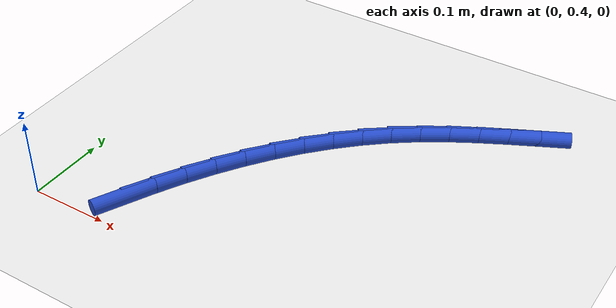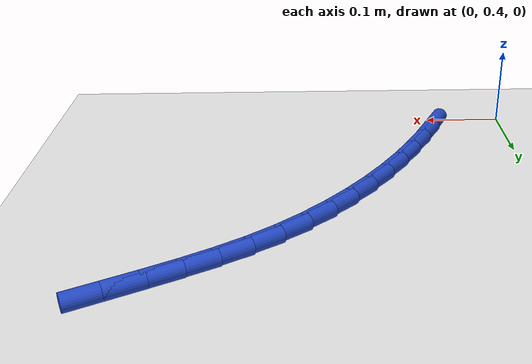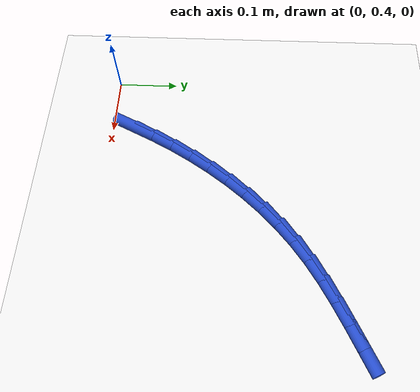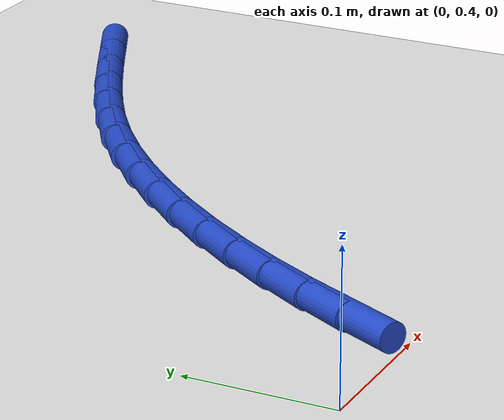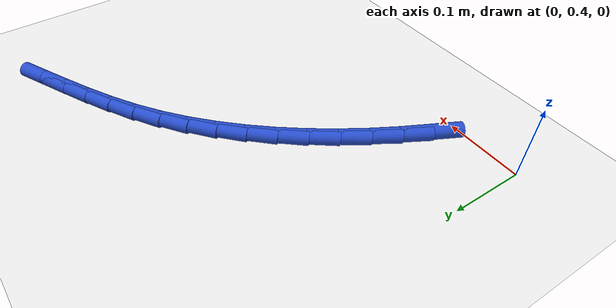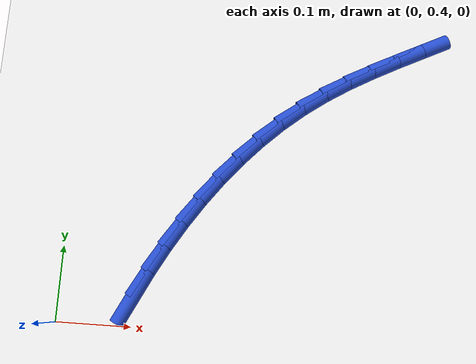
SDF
<sdf version="1.6">
 <world name="default">
  <model name="ground_plane">
   <static>1</static>
   <link name="link">
    <collision name="collision">
     <geometry><plane><normal>0 0 1</normal><size>100 100</size></plane></geometry>
     <surface><friction><ode><mu>100</mu><mu2>50</mu2></ode></friction></surface>
    </collision>
    <visual name="visual">
     <cast_shadows>0</cast_shadows>
     <geometry><plane><normal>0 0 1</normal><size>100 100</size></plane></geometry>
     <material>
      <script><uri>file://media/materials/scripts/gazebo.material</uri><name>Gazebo/WhiteGlow</name></script>
     </material>
    </visual>
   </link>
  </model>
  <model name="line">
   <link name="link_12">
    <pose>0.10034751541647847 0.4397093525467908 0.01 0 1.57 1.1107800819667435</pose>
    <collision name="collision">
     <geometry><cylinder><radius>0.01</radius><length>0.08</length></cylinder></geometry>
    </collision>
    <visual name="visual">
     <material>
      <script><name>Gazebo/Blue</name><uri>file://media/materials/scripts/gazebo.material</uri></script>
     </material>
     <geometry><cylinder><radius>0.01</radius><length>0.08</length></cylinder></geometry>
    </visual>
   </link>
   <link name="link_13">
    <pose>0.11752383029660916 0.47437613254816313 0.01 0 1.57 1.0696403028857504</pose>
    <collision name="collision">
     <geometry><cylinder><radius>0.01</radius><length>0.08</length></cylinder></geometry>
    </collision>
    <visual name="visual">
     <material>
      <script><name>Gazebo/Blue</name><uri>file://media/materials/scripts/gazebo.material</uri></script>
     </material>
     <geometry><cylinder><radius>0.01</radius><length>0.08</length></cylinder></geometry>
    </visual>
   </link>
   <link name="link_14">
    <pose>0.13608078985327582 0.5082512840514536 0.01 0 1.57 1.0260779592216136</pose>
    <collision name="collision">
     <geometry><cylinder><radius>0.01</radius><length>0.08</length></cylinder></geometry>
    </collision>
    <visual name="visual">
     <material>
      <script><name>Gazebo/Blue</name><uri>file://media/materials/scripts/gazebo.material</uri></script>
     </material>
     <geometry><cylinder><radius>0.01</radius><length>0.08</length></cylinder></geometry>
    </visual>
   </link>
   <link name="link_15">
    <pose>0.15602641358443975 0.5411723723821834 0.01 0 1.57 0.9797687786360625</pose>
    <collision name="collision">
     <geometry><cylinder><radius>0.01</radius><length>0.08</length></cylinder></geometry>
    </collision>
    <visual name="visual">
     <material>
      <script><name>Gazebo/Blue</name><uri>file://media/materials/scripts/gazebo.material</uri></script>
     </material>
     <geometry><cylinder><radius>0.01</radius><length>0.08</length></cylinder></geometry>
    </visual>
   </link>
   <link name="link_16">
    <pose>0.1773687209880618 0.5729769628658722 0.01 0 1.57 0.9303892517088639</pose>
    <collision name="collision">
     <geometry><cylinder><radius>0.01</radius><length>0.08</length></cylinder></geometry>
    </collision>
    <visual name="visual">
     <material>
      <script><name>Gazebo/Blue</name><uri>file://media/materials/scripts/gazebo.material</uri></script>
     </material>
     <geometry><cylinder><radius>0.01</radius><length>0.08</length></cylinder></geometry>
    </visual>
   </link>
   <link name="link_17">
    <pose>0.20011573156210302 0.6035026208280406 0.01 0 1.57 0.8776261070844655</pose>
    <collision name="collision">
     <geometry><cylinder><radius>0.01</radius><length>0.08</length></cylinder></geometry>
    </collision>
    <visual name="visual">
     <material>
      <script><name>Gazebo/Blue</name><uri>file://media/materials/scripts/gazebo.material</uri></script>
     </material>
     <geometry><cylinder><radius>0.01</radius><length>0.08</length></cylinder></geometry>
    </visual>
   </link>
   <link name="link_18">
    <pose>0.22427546480452476 0.6325869115942094 0.01 0 1.57 0.8211909925810428</pose>
    <collision name="collision">
     <geometry><cylinder><radius>0.01</radius><length>0.08</length></cylinder></geometry>
    </collision>
    <visual name="visual">
     <material>
      <script><name>Gazebo/Blue</name><uri>file://media/materials/scripts/gazebo.material</uri></script>
     </material>
     <geometry><cylinder><radius>0.01</radius><length>0.08</length></cylinder></geometry>
    </visual>
   </link>
   <link name="link_19">
    <pose>0.2498559402132878 0.660067400489899 0.01 0 1.57 0.7608412834058123</pose>
    <collision name="collision">
     <geometry><cylinder><radius>0.01</radius><length>0.08</length></cylinder></geometry>
    </collision>
    <visual name="visual">
     <material>
      <script><name>Gazebo/Blue</name><uri>file://media/materials/scripts/gazebo.material</uri></script>
     </material>
     <geometry><cylinder><radius>0.01</radius><length>0.08</length></cylinder></geometry>
    </visual>
   </link>
   <link name="link_20">
    <pose>0.2768651772863534 0.6857816528406295 0.01 0 1.57 0.69640743524502</pose>
    <collision name="collision">
     <geometry><cylinder><radius>0.01</radius><length>0.08</length></cylinder></geometry>
    </collision>
    <visual name="visual">
     <material>
      <script><name>Gazebo/Blue</name><uri>file://media/materials/scripts/gazebo.material</uri></script>
     </material>
     <geometry><cylinder><radius>0.01</radius><length>0.08</length></cylinder></geometry>
    </visual>
   </link>
   <link name="link_21">
    <pose>0.3053111955216825 0.7095672339719219 0.01 0 1.57 0.6280464921986971</pose>
    <collision name="collision">
     <geometry><cylinder><radius>0.01</radius><length>0.08</length></cylinder></geometry>
    </collision>
    <visual name="visual">
     <material>
      <script><name>Gazebo/Blue</name><uri>file://media/materials/scripts/gazebo.material</uri></script>
     </material>
     <geometry><cylinder><radius>0.01</radius><length>0.08</length></cylinder></geometry>
    </visual>
   </link>
   <link name="link_22">
    <pose>0.33519863604031175 0.731269310664203 0.01 0 1.57 0.5638640659860605</pose>
    <collision name="collision">
     <geometry><cylinder><radius>0.01</radius><length>0.08</length></cylinder></geometry>
    </collision>
    <visual name="visual">
     <material>
      <script><name>Gazebo/Blue</name><uri>file://media/materials/scripts/gazebo.material</uri></script>
     </material>
     <geometry><cylinder><radius>0.01</radius><length>0.08</length></cylinder></geometry>
    </visual>
   </link>
   <link name="link_23">
    <pose>0.36641076022891167 0.7510061579383303 0.01 0 1.57 0.5143066194858495</pose>
    <collision name="collision">
     <geometry><cylinder><radius>0.01</radius><length>0.08</length></cylinder></geometry>
    </collision>
    <visual name="visual">
     <material>
      <script><name>Gazebo/Blue</name><uri>file://media/materials/scripts/gazebo.material</uri></script>
     </material>
     <geometry><cylinder><radius>0.01</radius><length>0.08</length></cylinder></geometry>
    </visual>
   </link>
   <link name="link_24">
    <pose>0.39867868164184384 0.769238388248872 0.01 0 1.57 0.4801477147695534</pose>
    <collision name="collision">
     <geometry><cylinder><radius>0.01</radius><length>0.08</length></cylinder></geometry>
    </collision>
    <visual name="visual">
     <material>
      <script><name>Gazebo/Blue</name><uri>file://media/materials/scripts/gazebo.material</uri></script>
     </material>
     <geometry><cylinder><radius>0.01</radius><length>0.08</length></cylinder></geometry>
    </visual>
   </link>
   <link name="link_25">
    <pose>0.43172388320487454 0.7864482832692636 0.01 0 1.57 0.4612086540856606</pose>
    <collision name="collision">
     <geometry><cylinder><radius>0.01</radius><length>0.08</length></cylinder></geometry>
    </collision>
    <visual name="visual">
     <material>
      <script><name>Gazebo/Blue</name><uri>file://media/materials/scripts/gazebo.material</uri></script>
     </material>
     <geometry><cylinder><radius>0.01</radius><length>0.08</length></cylinder></geometry>
    </visual>
   </link>
   <link name="link_26">
    <pose>0.46526784784376946 0.80311812467294 0.01 0 1.57 0.4572290072283732</pose>
    <collision name="collision">
     <geometry><cylinder><radius>0.01</radius><length>0.08</length></cylinder></geometry>
    </collision>
    <visual name="visual">
     <material>
      <script><name>Gazebo/Blue</name><uri>file://media/materials/scripts/gazebo.material</uri></script>
     </material>
     <geometry><cylinder><radius>0.01</radius><length>0.08</length></cylinder></geometry>
    </visual>
   </link>
  </model>
 </world>
</sdf>
